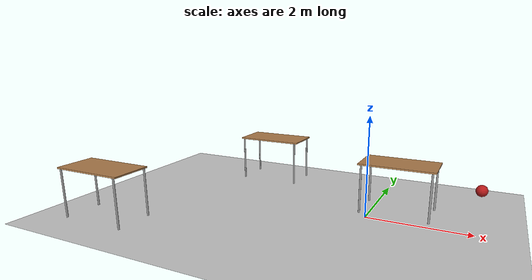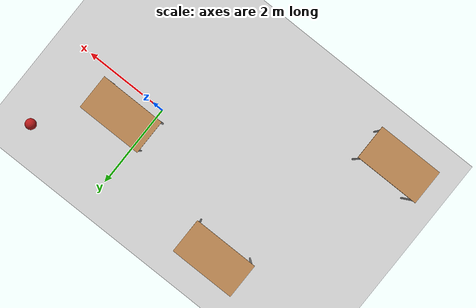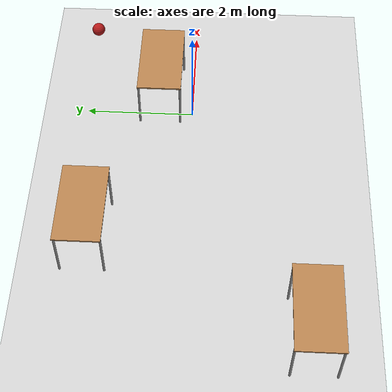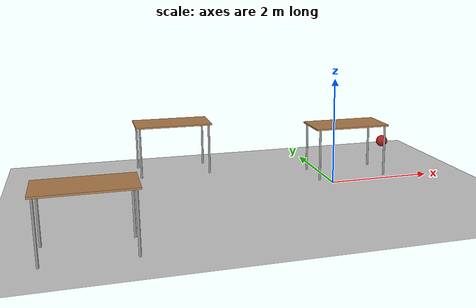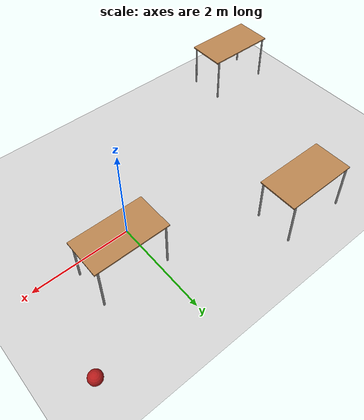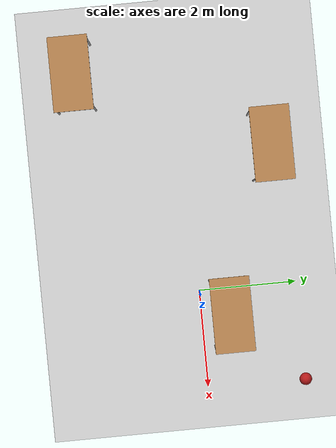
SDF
<sdf version="1.6">
 <world name="default">
  <include><uri>model://ground_plane</uri></include>
  <include><uri>model://sun</uri></include>
  <include><pose>2.0 2.0 0.1 0 0 0</pose><uri>model://ball</uri></include>
  <include><pose>-2.83389 1.70886 0 0 -0 0</pose><name>table_1</name><uri>model://table</uri></include>
  <include><pose>-4.58986 -2.14855 0 0 -0 0</pose><name>table_2</name><uri>model://table</uri></include>
  <include><pose>0.490431 0.599885 0 0 -0 0</pose><name>table_3</name><uri>model://table</uri></include>
 </world>
</sdf>

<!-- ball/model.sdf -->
<sdf version="1.5">
  <model name="ball">
    <pose>0 0 0 0 0 0</pose>
    <link name="link">
      <pose>0 0 0.127 0 0 0</pose>
      <inertial>
        <mass>0.15</mass>
        <inertia>
          <ixx>0.003226667</ixx>
          <ixy>0</ixy>
          <ixz>0</ixz>
          <iyy>0.003226667</iyy>
          <iyz>0</iyz>
          <izz>0.003226667</izz>
        </inertia>
      </inertial>

      <visual name="visual">
        <geometry>
          <sphere>
            <radius>0.127</radius>
          </sphere>
        </geometry>
        <material>
          <ambient>0.6 0.1 0.1 1</ambient>
          <diffuse>0.7 0.1 0.1 1</diffuse>
          <specular>0 0 0 0</specular>
          <emissive>0.0 0 0 1</emissive>
        </material>
      </visual>

      <collision name="collision">
        <geometry>
          <sphere>
            <radius>0.127</radius>
          </sphere>
        </geometry>
        <surface>
          <bounce>
            <restitution_coefficient>0.6</restitution_coefficient>
            <threshold>0</threshold>
          </bounce>
          <contact>
            <ode>
              <max_vel>5</max_vel>
              <min_depth>0.001</min_depth>
            </ode>
          </contact>
        </surface>
      </collision>
    </link>
  </model>
</sdf>

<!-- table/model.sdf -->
<sdf version="1.5">
  <model name="table">
    <static>true</static>
    <link name="link">
      <collision name="surface">
        <pose>0 0 1.0 0 0 0</pose>
        <geometry>
          <box>
            <size>1.5 0.8 0.03</size>
          </box>
        </geometry>
        <surface>
          <friction>
            <ode>
              <mu>0.6</mu>
              <mu2>0.6</mu2>
            </ode>
          </friction>
        </surface>
      </collision>
      <visual name="visual1">
        <pose>0 0 1.0 0 0 0</pose>
        <geometry>
          <box>
            <size>1.5 0.8 0.03</size>
          </box>
        </geometry>
        <material>
          <script>
            <uri>model://media/materials/scripts/gazebo.material</uri>
            <name>Gazebo/Wood</name>
          </script>
        </material>
      </visual>
      <collision name="front_left_leg">
        <pose>0.68 0.38 0.5 0 0 0</pose>
        <geometry>
          <cylinder>
            <radius>0.02</radius>
            <length>1.0</length>
          </cylinder>
        </geometry>
      </collision>
      <visual name="front_left_leg">
        <pose>0.68 0.38 0.5 0 0 0</pose>
        <geometry>
          <cylinder>
            <radius>0.02</radius>
            <length>1.0</length>
          </cylinder>
        </geometry>
        <material>
          <script>
            <uri>model://media/materials/scripts/gazebo.material</uri>
            <name>Gazebo/Grey</name>
          </script>
        </material>
      </visual>
      <collision name="front_right_leg">
        <pose>0.68 -0.38 0.5 0 0 0</pose>
        <geometry>
          <cylinder>
            <radius>0.02</radius>
            <length>1.0</length>
          </cylinder>
        </geometry>
      </collision>
      <visual name="front_right_leg">
        <pose>0.68 -0.38 0.5 0 0 0</pose>
        <geometry>
          <cylinder>
            <radius>0.02</radius>
            <length>1.0</length>
          </cylinder>
        </geometry>
        <material>
          <script>
            <uri>model://media/materials/scripts/gazebo.material</uri>
            <name>Gazebo/Grey</name>
          </script>
        </material>
      </visual>
      <collision name="back_right_leg">
        <pose>-0.68 -0.38 0.5 0 0 0</pose>
        <geometry>
          <cylinder>
            <radius>0.02</radius>
            <length>1.0</length>
          </cylinder>
        </geometry>
      </collision>
      <visual name="back_right_leg">
        <pose>-0.68 -0.38 0.5 0 0 0</pose>
        <geometry>
          <cylinder>
            <radius>0.02</radius>
            <length>1.0</length>
          </cylinder>
        </geometry>
        <material>
          <script>
            <uri>model://media/materials/scripts/gazebo.material</uri>
            <name>Gazebo/Grey</name>
          </script>
        </material>
      </visual>
      <collision name="back_left_leg">
        <pose>-0.68 0.38 0.5 0 0 0</pose>
        <geometry>
          <cylinder>
            <radius>0.02</radius>
            <length>1.0</length>
          </cylinder>
        </geometry>
      </collision>
      <visual name="back_left_leg">
        <pose>-0.68 0.38 0.5 0 0 0</pose>
        <geometry>
          <cylinder>
            <radius>0.02</radius>
            <length>1.0</length>
          </cylinder>
        </geometry>
        <material>
          <script>
            <uri>model://media/materials/scripts/gazebo.material</uri>
            <name>Gazebo/Grey</name>
          </script>
        </material>
      </visual>
    </link>
  </model>
</sdf>
